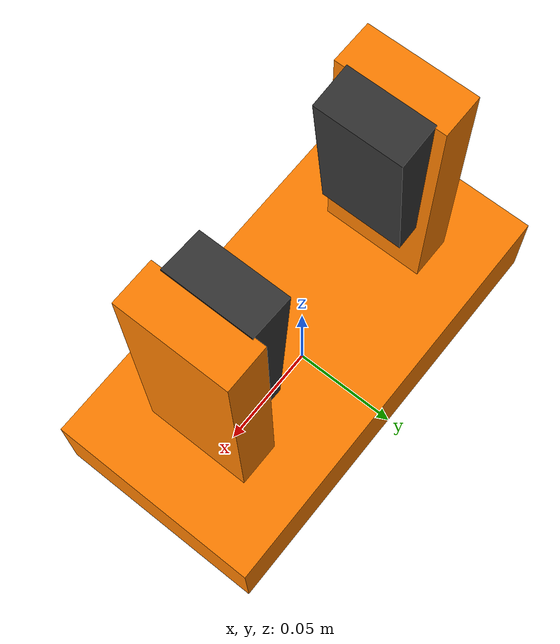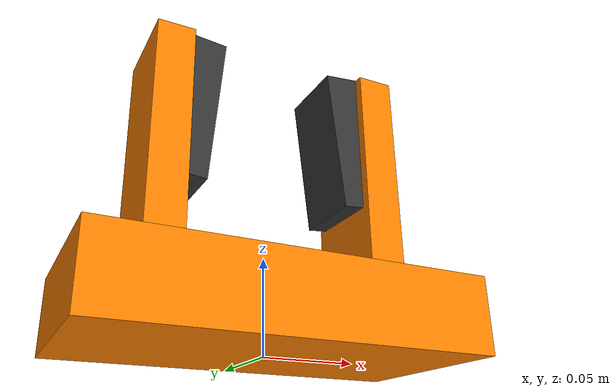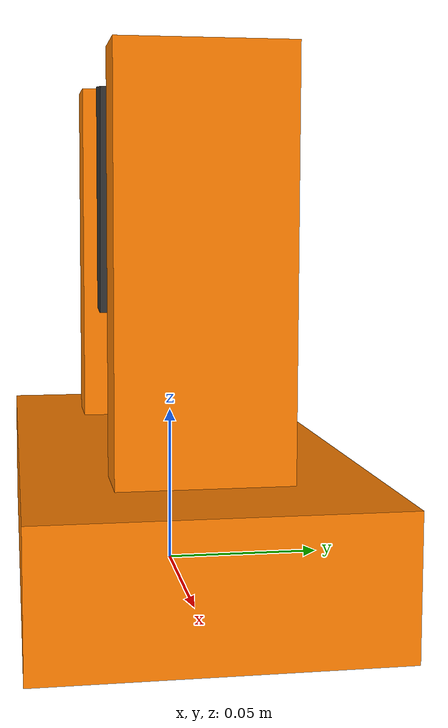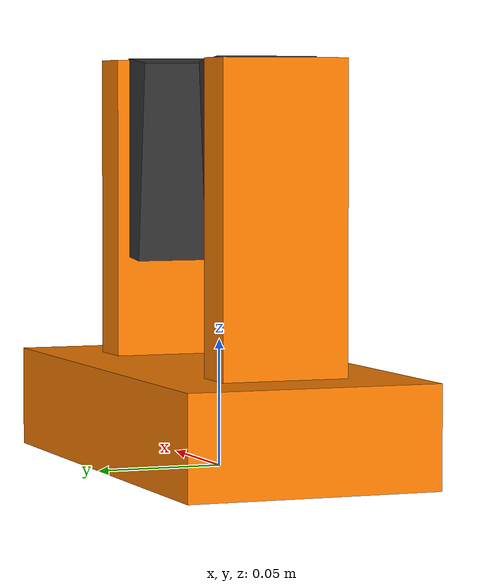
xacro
<?xml version="1.0"?>
<robot name="simple_gripper" xmlns:xacro="http://ros.org/wiki/xacro">

  <link name="palm">
    <visual>
      <geometry>
        <box size="0.2 0.1 0.04" />
      </geometry>
      <origin rpy="0 0 0" xyz="0 0 0.02"/>
      <material name="palm">
        <color rgba="1 0.5 0 1" />
      </material>
    </visual>
    <collision>
      <geometry>
        <box size="0.2 0.1 0.04" />
      </geometry>
      <origin rpy="0 0 0" xyz="0 0 0.02"/>
    </collision>
    <inertial>
      <mass value="0.1"/>
      <inertia ixx="0.001" ixy="0.0" ixz="0.0" iyy="0.001" iyz="0.0" izz="0.001"/>
    </inertial>
  </link>
  <gazebo reference="palm">
    <material>Gazebo/Orange</material>
  </gazebo>

  <xacro:macro name="finger" params="suffix">
   <link name="finger${suffix}">
    <visual>
      <geometry>
        <box size="0.02 0.05 0.12"/>
      </geometry>
      <origin rpy="0 0 0" xyz="0 0 0.06"/>
      <material name="fing">
        <color rgba="1 0.5 0 1" />
      </material>
    </visual>
    <collision>
      <geometry>
        <box size="0.02 0.05 0.12"/>
      </geometry>
      <origin rpy="0 0 0" xyz="0 0 0.06"/>
    </collision>
    <inertial>
      <mass value="0.1"/>
      <inertia ixx="0.001" ixy="0.0" ixz="0.0" iyy="0.001" iyz="0.0" izz="0.001"/>
    </inertial>
   </link>
   <gazebo reference="finger${suffix}">
     <material>Gazebo/Orange</material>
   </gazebo>

   <link name="pad${suffix}">
    <visual>
      <geometry>
        <box size="0.02 0.04 0.08"/>
      </geometry>
      <origin rpy="0 0 0" xyz="0 0 0.02"/>
      <material name="pad">
        <color rgba="0.2 0.2 0.2 1" />
      </material>
    </visual>
    <collision>
      <geometry>
        <box size="0.02 0.04 0.08"/>
      </geometry>
      <origin rpy="0 0 0" xyz="0 0 0.02"/>
    </collision>
    <inertial>
      <mass value="0.01"/>
      <inertia ixx="0.001" ixy="0.0" ixz="0.0" iyy="0.001" iyz="0.0" izz="0.001"/>
    </inertial>
   </link>
   <gazebo reference="pad${suffix}">
     <material>Gazebo/Grey</material>
   </gazebo>

   <joint name="finger${suffix}_to_pad${suffix}" type="fixed">
    <parent link="finger${suffix}"/>
    <child link="pad${suffix}"/>
    <origin xyz="0.013 0 0.06" rpy="0 0.1 0"/>
   </joint>

   <!-- make the pad squishy -->
   <gazebo reference="pad${suffix}">
    <mu1 value="10.0" />
    <mu2 value="10.0" />
    <kp  value="10000000" />
   </gazebo>

  </xacro:macro>

  <!-- make two fingers -->
  <xacro:finger suffix="1" />
  <xacro:finger suffix="2" />

  <!-- fingers can slide -->

  <joint name="palm_to_finger1" type="prismatic">
    <parent link="palm"/>
    <child link="finger1"/>
    <limit effort="100.0" lower="-0.03" upper="0.045" velocity="0.05"/>
    <origin xyz="0.06 0 0.04" rpy="0 0 3.14159265"/>
  </joint>

  <joint name="palm_to_finger2" type="prismatic">
    <parent link="palm"/>
    <child link="finger2"/>
    <limit effort="100.0" lower="-0.03" upper="0.045" velocity="0.05"/>
    <origin xyz="-0.06 0 0.04"/>
  </joint>

  <transmission name="finger1_trans">
    <type>transmission_interface/SimpleTransmission</type>
    <actuator name="finger1_motor">
      <mechanicalReduction>1</mechanicalReduction>
    </actuator>
    <joint name="palm_to_finger1">
      <hardwareInterface>hardware_interface/EffortJointInterface</hardwareInterface>
    </joint>
  </transmission>

  <transmission name="finger2_trans">
    <type>transmission_interface/SimpleTransmission</type>
    <actuator name="finger2_motor">
      <mechanicalReduction>1</mechanicalReduction>
    </actuator>
    <joint name="palm_to_finger2">
      <hardwareInterface>hardware_interface/EffortJointInterface</hardwareInterface>
    </joint>
  </transmission>

  <!-- the grasp fix stuff, disabled by default -->
  <xacro:arg name="use_grasp_fix" default="false" />
  <xacro:if value="$(arg use_grasp_fix)">
    <gazebo>
      <plugin name="gazebo_grasp_fix" filename="libgazebo_grasp_fix.so">
        <arm>
           <arm_name>arm</arm_name>
           <palm_link>wrist_3_link</palm_link>
           <gripper_link>finger1</gripper_link>
           <gripper_link>finger2</gripper_link>
        </arm>
        <forces_angle_tolerance>100</forces_angle_tolerance>
        <update_rate>4</update_rate>
        <grip_count_threshold>4</grip_count_threshold>
        <max_grip_count>8</max_grip_count>
        <release_tolerance>0.01</release_tolerance>
        <disable_collisions_on_attach>false</disable_collisions_on_attach>
        <contact_topic>__default_topic__</contact_topic>
      </plugin>
    </gazebo>
  </xacro:if>

</robot>
